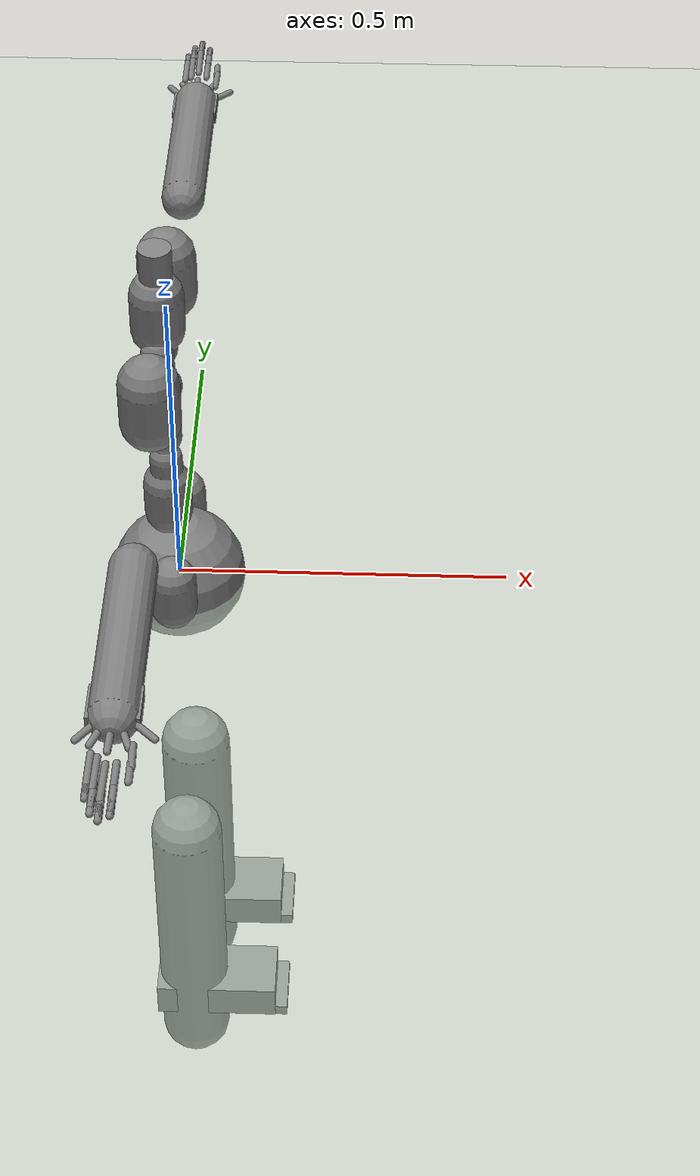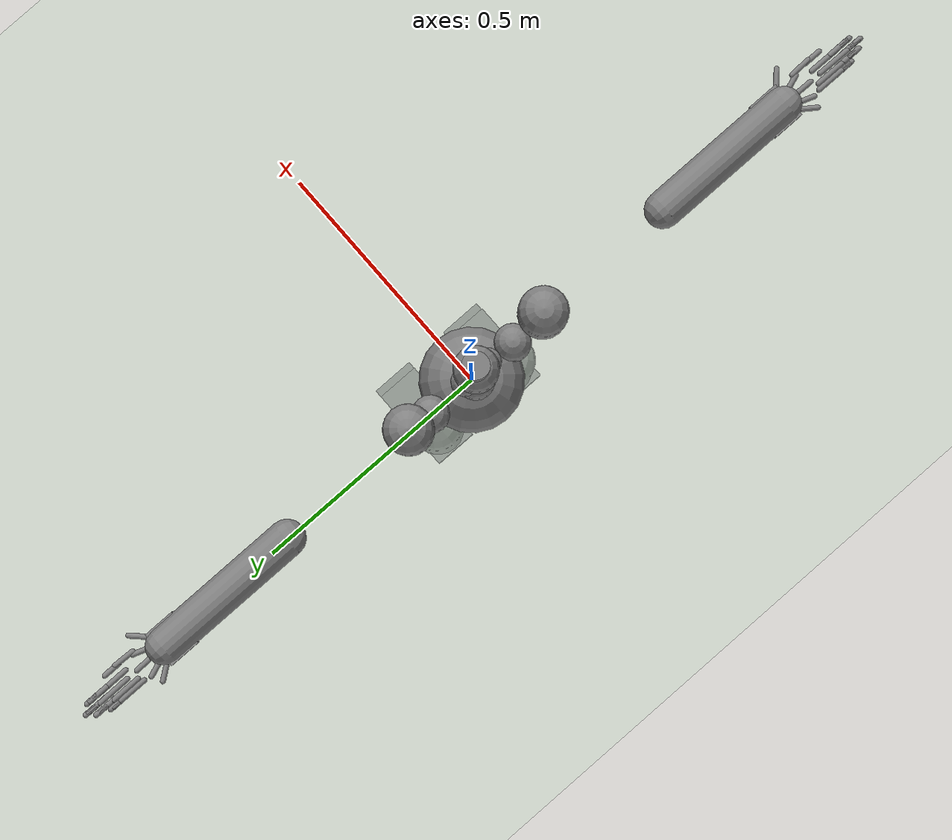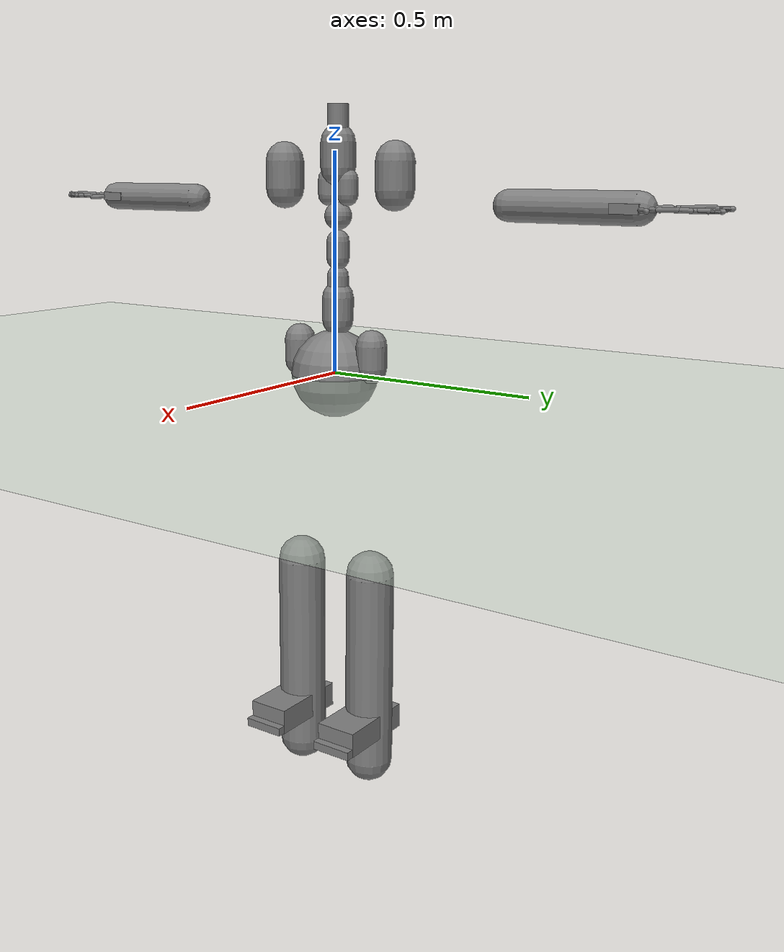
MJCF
<?xml version="1.0" ?>
<mujoco model="humanoid">
  <compiler coordinate="local"/>
  <statistic extent="2" center="0 0 1"/>
  <option timestep="0.00555"/>
  <default>
    <motor ctrlrange="-1 1" ctrllimited="true"/>
    <geom type="capsule" condim="1" friction="1.0 0.05 0.05" solimp=".9 .99 .003" solref=".015 1"/>
    <joint type="hinge" damping="0.1" stiffness="5" armature=".007" limited="true" solimplimit="0 .99 .01"/>
    <site size=".04" group="3"/>
  </default>
  <asset>
    <texture type="skybox" builtin="gradient" rgb1=".4 .5 .6" rgb2="0 0 0" width="100" height="100"/>
    <texture builtin="flat" height="1278" mark="cross" markrgb="1 1 1" name="texgeom" random="0.01" rgb1="0.8 0.6 0.4" rgb2="0.8 0.6 0.4" type="cube" width="127"/>
    <texture builtin="checker" height="100" name="texplane" rgb1="0 0 0" rgb2="0.8 0.8 0.8" type="2d" width="100"/>
    <material name="MatPlane" reflectance="0.5" shininess="1" specular="1" texrepeat="60 60" texture="texplane"/>
    <material name="geom" texture="texgeom" texuniform="true"/>
  </asset>
  <worldbody>
    <light cutoff="100" diffuse="1 1 1" dir="-0 0 -1.3" directional="true" exponent="1" pos="0 0 1.3" specular=".1 .1 .1"/>
    <geom conaffinity="1" condim="3" name="floor" pos="0 0 0" rgba="0.8 0.9 0.8 1" size="100 100 .2" type="plane" material="MatPlane"/>
    <body name="pHipOrigin" pos="0 0 0">
      <freejoint name="pHipOrigin"/>
      <geom type="sphere" contype="1" conaffinity="1" density="4629.6296296296305" size="0.10139" pos="0.0000 0.0000 -0.0000"/>
      <body name="jL5S1" pos="-0.01142534 0 0.10282781">
        <geom type="capsule" contype="1" conaffinity="1" density="1000" fromto="0 0 0.02069 0 0 0.07242" size="0.03621"/>
        <joint name="jL5S1_x" type="hinge" pos="0 0 0" axis="1 0 0" stiffness="500" damping="500" armature="0.02" range="-180.0000 180.0000"/>
        <joint name="jL5S1_y" type="hinge" pos="0 0 0" axis="0 1 0" stiffness="500" damping="500" armature="0.02" range="-180.0000 180.0000"/>
        <joint name="jL5S1_z" type="hinge" pos="0 0 0" axis="0 0 1" stiffness="500" damping="500" armature="0.02" range="-180.0000 180.0000"/>
        <body name="jL4L3" pos="0 0 0.07094710">
          <geom type="capsule" contype="1" conaffinity="1" density="1000" fromto="0 0 0.01419 0 0 0.04966" size="0.02483"/>
          <joint name="jL4L3_x" type="hinge" pos="0 0 0" axis="1 0 0" stiffness="500" damping="500" armature="0.02" range="-180.0000 180.0000"/>
          <joint name="jL4L3_y" type="hinge" pos="0 0 0" axis="0 1 0" stiffness="500" damping="500" armature="0.02" range="-180.0000 180.0000"/>
          <joint name="jL4L3_z" type="hinge" pos="0 0 0" axis="0 0 1" stiffness="500" damping="500" armature="0.02" range="-180.0000 180.0000"/>
          <body name="jL1T12" pos="-0.00057979 0 0.07515083">
            <geom type="capsule" contype="1" conaffinity="1" density="1000" fromto="0 0 0.01503 0 0 0.05261" size="0.02630"/>
            <joint name="jL1T12_x" type="hinge" pos="0 0 0" axis="1 0 0" stiffness="500" damping="500" armature="0.02" range="-180.0000 180.0000"/>
            <joint name="jL1T12_y" type="hinge" pos="0 0 0" axis="0 1 0" stiffness="500" damping="500" armature="0.02" range="-180.0000 180.0000"/>
            <joint name="jL1T12_z" type="hinge" pos="0 0 0" axis="0 0 1" stiffness="500" damping="500" armature="0.02" range="-180.0000 180.0000"/>
            <body name="jT9T8" pos="-0.00060196 0 0.07787338">
              <geom type="sphere" contype="1" conaffinity="1" density="1000" size="0.03115" pos="0.000 0.0000 0.031150"/>
              <joint name="jT9T8_x" type="hinge" pos="0 0 0" axis="1 0 0" stiffness="500" damping="500" armature="0.02" range="-180.0000 180.0000"/>
              <joint name="jT9T8_y" type="hinge" pos="0 0 0" axis="0 1 0" stiffness="500" damping="500" armature="0.02" range="-180.0000 180.0000"/>
              <joint name="jT9T8_z" type="hinge" pos="0 0 0" axis="0 0 1" stiffness="500" damping="500" armature="0.02" range="-180.0000 180.0000"/>
              <body name="jT1C7" pos="0 0 0.11337298">
                <geom type="capsule" contype="1" conaffinity="1" density="1000" fromto="0 0 0.02267 0 0 0.07936" size="0.03968"/>
                <joint name="jT1C7_x" type="hinge" pos="0 0 0" axis="1 0 0" stiffness="500" damping="500" armature="0.02" range="-180.0000 180.0000"/>
                <joint name="jT1C7_y" type="hinge" pos="0 0 0" axis="0 1 0" stiffness="500" damping="500" armature="0.02" range="-180.0000 180.0000"/>
                <joint name="jT1C7_z" type="hinge" pos="0 0 0" axis="0 0 1" stiffness="500" damping="500" armature="0.02" range="-180.0000 180.0000"/>
                <body name="jC1Head" pos="0.00094714 0 0.08028246">
                  <geom type="cylinder" contype="1" conaffinity="1" density="1000" fromto="0 0 0 0 0 0.08029" size="0.02409"/>
                  <joint name="jC1Head_x" type="hinge" pos="0 0 0" axis="1 0 0" stiffness="500" damping="500" armature="0.02" range="-180.0000 180.0000"/>
                  <joint name="jC1Head_y" type="hinge" pos="0 0 0" axis="0 1 0" stiffness="500" damping="500" armature="0.02" range="-180.0000 180.0000"/>
                  <joint name="jC1Head_z" type="hinge" pos="0 0 0" axis="0 0 1" stiffness="500" damping="500" armature="0.02" range="-180.0000 180.0000"/>
                </body>
              </body>
              <body name="jRightT4Shoulder" pos="0 -0.02613416 0.06372083">
                <geom type="capsule" contype="1" conaffinity="1" density="1000" fromto="0 0 0.01377 0 0 0.04821" size="0.02411"/>
                <joint name="jRightT4Shoulder_x" type="hinge" pos="0 0 0" axis="1 0 0" stiffness="500" damping="500" armature="0.02" range="-180.0000 180.0000"/>
                <joint name="jRightT4Shoulder_y" type="hinge" pos="0 0 0" axis="0 1 0" stiffness="500" damping="500" armature="0.02" range="-180.0000 180.0000"/>
                <joint name="jRightT4Shoulder_z" type="hinge" pos="0 0 0" axis="0 0 1" stiffness="500" damping="500" armature="0.02" range="-180.0000 180.0000"/>
                <body name="jRightShoulder" pos="0 -0.12579043 0">
                  <geom type="capsule" contype="1" conaffinity="1" density="1000" fromto="0 0 0.02516 0 0 0.08805" size="0.04403"/>
                  <joint name="jRightShoulder_x" type="hinge" pos="0 0 0" axis="1 0 0" stiffness="500" damping="500" armature="0.02" range="-180.0000 180.0000"/>
                  <joint name="jRightShoulder_y" type="hinge" pos="0 0 0" axis="0 1 0" stiffness="500" damping="500" armature="0.02" range="-180.0000 180.0000"/>
                  <joint name="jRightShoulder_z" type="hinge" pos="0 0 0" axis="0 0 1" stiffness="500" damping="500" armature="0.02" range="-180.0000 180.0000"/>
                  <body name="jRightElbow" pos="0 -0.27853596 0">
                    <geom type="capsule" contype="1" conaffinity="1" density="1000" fromto="0 0 0 0.00000000 -0.27853596 0.00000000" size="0.03342"/>
                    <joint name="jRightElbow_x" type="hinge" pos="0 0 0" axis="1 0 0" stiffness="500" damping="500" armature="0.02" range="-180.0000 180.0000"/>
                    <joint name="jRightElbow_y" type="hinge" pos="0 0 0" axis="0 1 0" stiffness="500" damping="500" armature="0.02" range="-180.0000 180.0000"/>
                    <joint name="jRightElbow_z" type="hinge" pos="0 0 0" axis="0 0 1" stiffness="500" damping="500" armature="0.02" range="-180.0000 180.0000"/>
                    <body name="jRightWrist" pos="0.00010478 -0.26033485 0">
                      <geom density="1000" type="box" pos="0 0 0" size="0.035 0.03 0.01" quat="1.0000 0.0000 0.0000 0.0000"/>
                      <joint name="jRightWrist_x" type="hinge" pos="0 0 0" axis="1 0 0" stiffness="500" damping="500" armature="0.02" range="-180.0000 180.0000"/>
                      <joint name="jRightWrist_y" type="hinge" pos="0 0 0" axis="0 1 0" stiffness="500" damping="500" armature="0.02" range="-180.0000 180.0000"/>
                      <joint name="jRightWrist_z" type="hinge" pos="0 0 0" axis="0 0 1" stiffness="500" damping="500" armature="0.02" range="-180.0000 180.0000"/>
                      <body name="jRightFirstCMC" pos="0.02737740 -0.02624278 -0.00123982">
                        <geom type="capsule" contype="1" conaffinity="1" density="1000" fromto="0 0 0 0.02737740 -0.02624278 -0.00123982" size="0.005"/>
                        <joint name="jRightFirstCMC_x" type="hinge" pos="0 0 0" axis="1 0 0" stiffness="500" damping="500" armature="0.02" range="-180.0000 180.0000"/>
                        <joint name="jRightFirstCMC_y" type="hinge" pos="0 0 0" axis="0 1 0" stiffness="500" damping="500" armature="0.02" range="-180.0000 180.0000"/>
                        <joint name="jRightFirstCMC_z" type="hinge" pos="0 0 0" axis="0 0 1" stiffness="500" damping="500" armature="0.02" range="-180.0000 180.0000"/>
                        <body name="jRightFirstMCP" pos="0.00136931 -0.03864103 0.00081648">
                          <geom type="capsule" contype="1" conaffinity="1" density="1000" fromto="0 0 0 0.00136931 -0.03864103 0.00081648" size="0.005"/>
                          <joint name="jRightFirstMCP_x" type="hinge" pos="0 0 0" axis="1 0 0" stiffness="500" damping="500" armature="0.02" range="-180.0000 180.0000"/>
                          <joint name="jRightFirstMCP_y" type="hinge" pos="0 0 0" axis="0 1 0" stiffness="500" damping="500" armature="0.02" range="-180.0000 180.0000"/>
                          <joint name="jRightFirstMCP_z" type="hinge" pos="0 0 0" axis="0 0 1" stiffness="500" damping="500" armature="0.02" range="-180.0000 180.0000"/>
                          <body name="jRightIP" pos="0 -0.03138667 0">
                            <geom type="capsule" contype="1" conaffinity="1" density="1000" fromto="0 0 0 0.00000000 -0.03138667 0.00000000" size="0.005"/>
                            <joint name="jRightIP_x" type="hinge" pos="0 0 0" axis="1 0 0" stiffness="500" damping="500" armature="0.02" range="-180.0000 180.0000"/>
                            <joint name="jRightIP_y" type="hinge" pos="0 0 0" axis="0 1 0" stiffness="500" damping="500" armature="0.02" range="-180.0000 180.0000"/>
                            <joint name="jRightIP_z" type="hinge" pos="0 0 0" axis="0 0 1" stiffness="500" damping="500" armature="0.02" range="-180.0000 180.0000"/>
                          </body>
                        </body>
                      </body>
                      <body name="jRightSecondCMC" pos="0.01187026 -0.03468115 -0.00060492">
                        <geom type="capsule" contype="1" conaffinity="1" density="1000" fromto="0 0 0 0.01187026 -0.03468115 -0.00060492" size="0.005"/>
                        <joint name="jRightSecondCMC_x" type="hinge" pos="0 0 0" axis="1 0 0" stiffness="500" damping="500" armature="0.02" range="-180.0000 180.0000"/>
                        <joint name="jRightSecondCMC_y" type="hinge" pos="0 0 0" axis="0 1 0" stiffness="500" damping="500" armature="0.02" range="-180.0000 180.0000"/>
                        <joint name="jRightSecondCMC_z" type="hinge" pos="0 0 0" axis="0 0 1" stiffness="500" damping="500" armature="0.02" range="-180.0000 180.0000"/>
                        <body name="jRightSecondMCP" pos="-0.00038136 -0.06082478 -0.00063095">
                          <geom type="capsule" contype="1" conaffinity="1" density="1000" fromto="0 0 0 -0.00038136 -0.06082478 -0.00063095" size="0.005"/>
                          <joint name="jRightSecondMCP_x" type="hinge" pos="0 0 0" axis="1 0 0" stiffness="500" damping="500" armature="0.02" range="-180.0000 180.0000"/>
                          <joint name="jRightSecondMCP_y" type="hinge" pos="0 0 0" axis="0 1 0" stiffness="500" damping="500" armature="0.02" range="-180.0000 180.0000"/>
                          <joint name="jRightSecondMCP_z" type="hinge" pos="0 0 0" axis="0 0 1" stiffness="500" damping="500" armature="0.02" range="-180.0000 180.0000"/>
                          <body name="jRightSecondPIP" pos="0 -0.04176747 0">
                            <geom type="capsule" contype="1" conaffinity="1" density="1000" fromto="0 0 0 0.00000000 -0.04176747 0.00000000" size="0.005"/>
                            <joint name="jRightSecondPIP_x" type="hinge" pos="0 0 0" axis="1 0 0" stiffness="500" damping="500" armature="0.02" range="-180.0000 180.0000"/>
                            <joint name="jRightSecondPIP_y" type="hinge" pos="0 0 0" axis="0 1 0" stiffness="500" damping="500" armature="0.02" range="-180.0000 180.0000"/>
                            <joint name="jRightSecondPIP_z" type="hinge" pos="0 0 0" axis="0 0 1" stiffness="500" damping="500" armature="0.02" range="-180.0000 180.0000"/>
                            <body name="jRightSecondDIP" pos="0 -0.02283315 0">
                              <geom type="capsule" contype="1" conaffinity="1" density="1000" fromto="0 0 0 0.00000000 -0.02283315 0.00000000" size="0.005"/>
                              <joint name="jRightSecondDIP_x" type="hinge" pos="0 0 0" axis="1 0 0" stiffness="500" damping="500" armature="0.02" range="-180.0000 180.0000"/>
                              <joint name="jRightSecondDIP_y" type="hinge" pos="0 0 0" axis="0 1 0" stiffness="500" damping="500" armature="0.02" range="-180.0000 180.0000"/>
                              <joint name="jRightSecondDIP_z" type="hinge" pos="0 0 0" axis="0 0 1" stiffness="500" damping="500" armature="0.02" range="-180.0000 180.0000"/>
                            </body>
                          </body>
                        </body>
                      </body>
                      <body name="jRightThirdCMC" pos="-0.00074524 -0.04030108 0.00169432">
                        <geom type="capsule" contype="1" conaffinity="1" density="1000" fromto="0 0 0 -0.00074524 -0.04030108 0.00169432" size="0.005"/>
                        <joint name="jRightThirdCMC_x" type="hinge" pos="0 0 0" axis="1 0 0" stiffness="500" damping="500" armature="0.02" range="-180.0000 180.0000"/>
                        <joint name="jRightThirdCMC_y" type="hinge" pos="0 0 0" axis="0 1 0" stiffness="500" damping="500" armature="0.02" range="-180.0000 180.0000"/>
                        <joint name="jRightThirdCMC_z" type="hinge" pos="0 0 0" axis="0 0 1" stiffness="500" damping="500" armature="0.02" range="-180.0000 180.0000"/>
                        <body name="jRightThirdMCP" pos="-0.00074665 -0.06186006 0.00168297">
                          <geom type="capsule" contype="1" conaffinity="1" density="1000" fromto="0 0 0 -0.00074665 -0.06186006 0.00168297" size="0.005"/>
                          <joint name="jRightThirdMCP_x" type="hinge" pos="0 0 0" axis="1 0 0" stiffness="500" damping="500" armature="0.02" range="-180.0000 180.0000"/>
                          <joint name="jRightThirdMCP_y" type="hinge" pos="0 0 0" axis="0 1 0" stiffness="500" damping="500" armature="0.02" range="-180.0000 180.0000"/>
                          <joint name="jRightThirdMCP_z" type="hinge" pos="0 0 0" axis="0 0 1" stiffness="500" damping="500" armature="0.02" range="-180.0000 180.0000"/>
                          <body name="jRightThirdPIP" pos="0 -0.04531875 0">
                            <geom type="capsule" contype="1" conaffinity="1" density="1000" fromto="0 0 0 0.00000000 -0.04531875 0.00000000" size="0.005"/>
                            <joint name="jRightThirdPIP_x" type="hinge" pos="0 0 0" axis="1 0 0" stiffness="500" damping="500" armature="0.02" range="-180.0000 180.0000"/>
                            <joint name="jRightThirdPIP_y" type="hinge" pos="0 0 0" axis="0 1 0" stiffness="500" damping="500" armature="0.02" range="-180.0000 180.0000"/>
                            <joint name="jRightThirdPIP_z" type="hinge" pos="0 0 0" axis="0 0 1" stiffness="500" damping="500" armature="0.02" range="-180.0000 180.0000"/>
                            <body name="jRightThirdDIP" pos="0 -0.02422474 0">
                              <geom type="capsule" contype="1" conaffinity="1" density="1000" fromto="0 0 0 0.00000000 -0.02422474 0.00000000" size="0.005"/>
                              <joint name="jRightThirdDIP_x" type="hinge" pos="0 0 0" axis="1 0 0" stiffness="500" damping="500" armature="0.02" range="-180.0000 180.0000"/>
                              <joint name="jRightThirdDIP_y" type="hinge" pos="0 0 0" axis="0 1 0" stiffness="500" damping="500" armature="0.02" range="-180.0000 180.0000"/>
                              <joint name="jRightThirdDIP_z" type="hinge" pos="0 0 0" axis="0 0 1" stiffness="500" damping="500" armature="0.02" range="-180.0000 180.0000"/>
                            </body>
                          </body>
                        </body>
                      </body>
                      <body name="jRightFourthCMC" pos="-0.01237527 -0.03446717 0.00081130">
                        <geom type="capsule" contype="1" conaffinity="1" density="1000" fromto="0 0 0 -0.01237527 -0.03446717 0.00081130" size="0.005"/>
                        <joint name="jRightFourthCMC_x" type="hinge" pos="0 0 0" axis="1 0 0" stiffness="500" damping="500" armature="0.02" range="-180.0000 180.0000"/>
                        <joint name="jRightFourthCMC_y" type="hinge" pos="0 0 0" axis="0 1 0" stiffness="500" damping="500" armature="0.02" range="-180.0000 180.0000"/>
                        <joint name="jRightFourthCMC_z" type="hinge" pos="0 0 0" axis="0 0 1" stiffness="500" damping="500" armature="0.02" range="-180.0000 180.0000"/>
                        <body name="jRightFourthMCP" pos="-0.00039673 -0.05437550 0.00085428">
                          <geom type="capsule" contype="1" conaffinity="1" density="1000" fromto="0 0 0 -0.00039673 -0.05437550 0.00085428" size="0.005"/>
                          <joint name="jRightFourthMCP_x" type="hinge" pos="0 0 0" axis="1 0 0" stiffness="500" damping="500" armature="0.02" range="-180.0000 180.0000"/>
                          <joint name="jRightFourthMCP_y" type="hinge" pos="0 0 0" axis="0 1 0" stiffness="500" damping="500" armature="0.02" range="-180.0000 180.0000"/>
                          <joint name="jRightFourthMCP_z" type="hinge" pos="0 0 0" axis="0 0 1" stiffness="500" damping="500" armature="0.02" range="-180.0000 180.0000"/>
                          <body name="jRightFourthPIP" pos="0 -0.04341105 0">
                            <geom type="capsule" contype="1" conaffinity="1" density="1000" fromto="0 0 0 0.00000000 -0.04341105 0.00000000" size="0.005"/>
                            <joint name="jRightFourthPIP_x" type="hinge" pos="0 0 0" axis="1 0 0" stiffness="500" damping="500" armature="0.02" range="-180.0000 180.0000"/>
                            <joint name="jRightFourthPIP_y" type="hinge" pos="0 0 0" axis="0 1 0" stiffness="500" damping="500" armature="0.02" range="-180.0000 180.0000"/>
                            <joint name="jRightFourthPIP_z" type="hinge" pos="0 0 0" axis="0 0 1" stiffness="500" damping="500" armature="0.02" range="-180.0000 180.0000"/>
                            <body name="jRightFourthDIP" pos="0 -0.02538905 0">
                              <geom type="capsule" contype="1" conaffinity="1" density="1000" fromto="0 0 0 0.00000000 -0.02538905 0.00000000" size="0.005"/>
                              <joint name="jRightFourthDIP_x" type="hinge" pos="0 0 0" axis="1 0 0" stiffness="500" damping="500" armature="0.02" range="-180.0000 180.0000"/>
                              <joint name="jRightFourthDIP_y" type="hinge" pos="0 0 0" axis="0 1 0" stiffness="500" damping="500" armature="0.02" range="-180.0000 180.0000"/>
                              <joint name="jRightFourthDIP_z" type="hinge" pos="0 0 0" axis="0 0 1" stiffness="500" damping="500" armature="0.02" range="-180.0000 180.0000"/>
                            </body>
                          </body>
                        </body>
                      </body>
                      <body name="jRightFifthCMC" pos="-0.02164004 -0.03015293 0.00059482">
                        <geom type="capsule" contype="1" conaffinity="1" density="1000" fromto="0 0 0 -0.02164004 -0.03015293 0.00059482" size="0.005"/>
                        <joint name="jRightFifthCMC_x" type="hinge" pos="0 0 0" axis="1 0 0" stiffness="500" damping="500" armature="0.02" range="-180.0000 180.0000"/>
                        <joint name="jRightFifthCMC_y" type="hinge" pos="0 0 0" axis="0 1 0" stiffness="500" damping="500" armature="0.02" range="-180.0000 180.0000"/>
                        <joint name="jRightFifthCMC_z" type="hinge" pos="0 0 0" axis="0 0 1" stiffness="500" damping="500" armature="0.02" range="-180.0000 180.0000"/>
                        <body name="jRightFifthMCP" pos="-0.00000776 -0.05256160 0.00072331">
                          <geom type="capsule" contype="1" conaffinity="1" density="1000" fromto="0 0 0 -0.00000776 -0.05256160 0.00072331" size="0.005"/>
                          <joint name="jRightFifthMCP_x" type="hinge" pos="0 0 0" axis="1 0 0" stiffness="500" damping="500" armature="0.02" range="-180.0000 180.0000"/>
                          <joint name="jRightFifthMCP_y" type="hinge" pos="0 0 0" axis="0 1 0" stiffness="500" damping="500" armature="0.02" range="-180.0000 180.0000"/>
                          <joint name="jRightFifthMCP_z" type="hinge" pos="0 0 0" axis="0 0 1" stiffness="500" damping="500" armature="0.02" range="-180.0000 180.0000"/>
                          <body name="jRightFifthPIP" pos="0 -0.03581314 0">
                            <geom type="capsule" contype="1" conaffinity="1" density="1000" fromto="0 0 0 0.00000000 -0.03581314 0.00000000" size="0.005"/>
                            <joint name="jRightFifthPIP_x" type="hinge" pos="0 0 0" axis="1 0 0" stiffness="500" damping="500" armature="0.02" range="-180.0000 180.0000"/>
                            <joint name="jRightFifthPIP_y" type="hinge" pos="0 0 0" axis="0 1 0" stiffness="500" damping="500" armature="0.02" range="-180.0000 180.0000"/>
                            <joint name="jRightFifthPIP_z" type="hinge" pos="0 0 0" axis="0 0 1" stiffness="500" damping="500" armature="0.02" range="-180.0000 180.0000"/>
                            <body name="jRightFifthDIP" pos="0 -0.01968053 0">
                              <geom type="capsule" contype="1" conaffinity="1" density="1000" fromto="0 0 0 0.00000000 -0.01968053 0.00000000" size="0.005"/>
                              <joint name="jRightFifthDIP_x" type="hinge" pos="0 0 0" axis="1 0 0" stiffness="500" damping="500" armature="0.02" range="-180.0000 180.0000"/>
                              <joint name="jRightFifthDIP_y" type="hinge" pos="0 0 0" axis="0 1 0" stiffness="500" damping="500" armature="0.02" range="-180.0000 180.0000"/>
                              <joint name="jRightFifthDIP_z" type="hinge" pos="0 0 0" axis="0 0 1" stiffness="500" damping="500" armature="0.02" range="-180.0000 180.0000"/>
                            </body>
                          </body>
                        </body>
                      </body>
                    </body>
                  </body>
                </body>
              </body>
              <body name="jLeftT4Shoulder" pos="0 0.02612775 0.06370520">
                <geom type="capsule" contype="1" conaffinity="1" density="1000" fromto="0 0 0.01377 0 0 0.04820" size="0.02410"/>
                <joint name="jLeftT4Shoulder_x" type="hinge" pos="0 0 0" axis="1 0 0" stiffness="500" damping="500" armature="0.02" range="-180.0000 180.0000"/>
                <joint name="jLeftT4Shoulder_y" type="hinge" pos="0 0 0" axis="0 1 0" stiffness="500" damping="500" armature="0.02" range="-180.0000 180.0000"/>
                <joint name="jLeftT4Shoulder_z" type="hinge" pos="0 0 0" axis="0 0 1" stiffness="500" damping="500" armature="0.02" range="-180.0000 180.0000"/>
                <body name="jLeftShoulder" pos="0 0.12607855 0">
                  <geom type="capsule" contype="1" conaffinity="1" density="1000" fromto="0 0 0.02522 0 0 0.08825" size="0.04413"/>
                  <joint name="jLeftShoulder_x" type="hinge" pos="0 0 0" axis="1 0 0" stiffness="500" damping="500" armature="0.02" range="-180.0000 180.0000"/>
                  <joint name="jLeftShoulder_y" type="hinge" pos="0 0 0" axis="0 1 0" stiffness="500" damping="500" armature="0.02" range="-180.0000 180.0000"/>
                  <joint name="jLeftShoulder_z" type="hinge" pos="0 0 0" axis="0 0 1" stiffness="500" damping="500" armature="0.02" range="-180.0000 180.0000"/>
                  <body name="jLeftElbow" pos="0 0.27934906 0">
                    <geom type="capsule" contype="1" conaffinity="1" density="1000" fromto="0 0 0 0.00000000 0.27934906 0.00000000" size="0.03352"/>
                    <joint name="jLeftElbow_x" type="hinge" pos="0 0 0" axis="1 0 0" stiffness="500" damping="500" armature="0.02" range="-180.0000 180.0000"/>
                    <joint name="jLeftElbow_y" type="hinge" pos="0 0 0" axis="0 1 0" stiffness="500" damping="500" armature="0.02" range="-180.0000 180.0000"/>
                    <joint name="jLeftElbow_z" type="hinge" pos="0 0 0" axis="0 0 1" stiffness="500" damping="500" armature="0.02" range="-180.0000 180.0000"/>
                    <body name="jLeftWrist" pos="0.00010498 0.26083935 0">
                      <geom density="1000" type="box" pos="0 0 0" size="0.035 0.03 0.01" quat="1.0000 0.0000 0.0000 0.0000"/>
                      <joint name="jLeftWrist_x" type="hinge" pos="0 0 0" axis="1 0 0" stiffness="500" damping="500" armature="0.02" range="-180.0000 180.0000"/>
                      <joint name="jLeftWrist_y" type="hinge" pos="0 0 0" axis="0 1 0" stiffness="500" damping="500" armature="0.02" range="-180.0000 180.0000"/>
                      <joint name="jLeftWrist_z" type="hinge" pos="0 0 0" axis="0 0 1" stiffness="500" damping="500" armature="0.02" range="-180.0000 180.0000"/>
                      <body name="jLeftFirstCMC" pos="0.02679603 0.02685931 -0.00119930">
                        <geom type="capsule" contype="1" conaffinity="1" density="1000" fromto="0 0 0 0.02679603 0.02685931 -0.00119930" size="0.005"/>
                        <joint name="jLeftFirstCMC_x" type="hinge" pos="0 0 0" axis="1 0 0" stiffness="500" damping="500" armature="0.02" range="-180.0000 180.0000"/>
                        <joint name="jLeftFirstCMC_y" type="hinge" pos="0 0 0" axis="0 1 0" stiffness="500" damping="500" armature="0.02" range="-180.0000 180.0000"/>
                        <joint name="jLeftFirstCMC_z" type="hinge" pos="0 0 0" axis="0 0 1" stiffness="500" damping="500" armature="0.02" range="-180.0000 180.0000"/>
                        <body name="jLeftFirstMCP" pos="0.00135612 0.03864016 0.00079569">
                          <geom type="capsule" contype="1" conaffinity="1" density="1000" fromto="0 0 0 0.00135612 0.03864016 0.00079569" size="0.005"/>
                          <joint name="jLeftFirstMCP_x" type="hinge" pos="0 0 0" axis="1 0 0" stiffness="500" damping="500" armature="0.02" range="-180.0000 180.0000"/>
                          <joint name="jLeftFirstMCP_y" type="hinge" pos="0 0 0" axis="0 1 0" stiffness="500" damping="500" armature="0.02" range="-180.0000 180.0000"/>
                          <joint name="jLeftFirstMCP_z" type="hinge" pos="0 0 0" axis="0 0 1" stiffness="500" damping="500" armature="0.02" range="-180.0000 180.0000"/>
                          <body name="jLeftIP" pos="0 0.03138667 0">
                            <geom type="capsule" contype="1" conaffinity="1" density="1000" fromto="0 0 0 0.00000000 0.03138667 0.00000000" size="0.005"/>
                            <joint name="jLeftIP_x" type="hinge" pos="0 0 0" axis="1 0 0" stiffness="500" damping="500" armature="0.02" range="-180.0000 180.0000"/>
                            <joint name="jLeftIP_y" type="hinge" pos="0 0 0" axis="0 1 0" stiffness="500" damping="500" armature="0.02" range="-180.0000 180.0000"/>
                            <joint name="jLeftIP_z" type="hinge" pos="0 0 0" axis="0 0 1" stiffness="500" damping="500" armature="0.02" range="-180.0000 180.0000"/>
                          </body>
                        </body>
                      </body>
                      <body name="jLeftSecondCMC" pos="0.01200699 0.03461734 -0.00060992">
                        <geom type="capsule" contype="1" conaffinity="1" density="1000" fromto="0 0 0 0.01200699 0.03461734 -0.00060992" size="0.005"/>
                        <joint name="jLeftSecondCMC_x" type="hinge" pos="0 0 0" axis="1 0 0" stiffness="500" damping="500" armature="0.02" range="-180.0000 180.0000"/>
                        <joint name="jLeftSecondCMC_y" type="hinge" pos="0 0 0" axis="0 1 0" stiffness="500" damping="500" armature="0.02" range="-180.0000 180.0000"/>
                        <joint name="jLeftSecondCMC_z" type="hinge" pos="0 0 0" axis="0 0 1" stiffness="500" damping="500" armature="0.02" range="-180.0000 180.0000"/>
                        <body name="jLeftSecondMCP" pos="-0.00033252 0.06082603 -0.00063875">
                          <geom type="capsule" contype="1" conaffinity="1" density="1000" fromto="0 0 0 -0.00033252 0.06082603 -0.00063875" size="0.005"/>
                          <joint name="jLeftSecondMCP_x" type="hinge" pos="0 0 0" axis="1 0 0" stiffness="500" damping="500" armature="0.02" range="-180.0000 180.0000"/>
                          <joint name="jLeftSecondMCP_y" type="hinge" pos="0 0 0" axis="0 1 0" stiffness="500" damping="500" armature="0.02" range="-180.0000 180.0000"/>
                          <joint name="jLeftSecondMCP_z" type="hinge" pos="0 0 0" axis="0 0 1" stiffness="500" damping="500" armature="0.02" range="-180.0000 180.0000"/>
                          <body name="jLeftSecondPIP" pos="0 0.04176747 0">
                            <geom type="capsule" contype="1" conaffinity="1" density="1000" fromto="0 0 0 0.00000000 0.04176747 0.00000000" size="0.005"/>
                            <joint name="jLeftSecondPIP_x" type="hinge" pos="0 0 0" axis="1 0 0" stiffness="500" damping="500" armature="0.02" range="-180.0000 180.0000"/>
                            <joint name="jLeftSecondPIP_y" type="hinge" pos="0 0 0" axis="0 1 0" stiffness="500" damping="500" armature="0.02" range="-180.0000 180.0000"/>
                            <joint name="jLeftSecondPIP_z" type="hinge" pos="0 0 0" axis="0 0 1" stiffness="500" damping="500" armature="0.02" range="-180.0000 180.0000"/>
                            <body name="jLeftSecondDIP" pos="0 0.02283315 0">
                              <geom type="capsule" contype="1" conaffinity="1" density="1000" fromto="0 0 0 0.00000000 0.02283315 0.00000000" size="0.005"/>
                              <joint name="jLeftSecondDIP_x" type="hinge" pos="0 0 0" axis="1 0 0" stiffness="500" damping="500" armature="0.02" range="-180.0000 180.0000"/>
                              <joint name="jLeftSecondDIP_y" type="hinge" pos="0 0 0" axis="0 1 0" stiffness="500" damping="500" armature="0.02" range="-180.0000 180.0000"/>
                              <joint name="jLeftSecondDIP_z" type="hinge" pos="0 0 0" axis="0 0 1" stiffness="500" damping="500" armature="0.02" range="-180.0000 180.0000"/>
                            </body>
                          </body>
                        </body>
                      </body>
                      <body name="jLeftThirdCMC" pos="-0.00074962 0.04030470 0.00163784">
                        <geom type="capsule" contype="1" conaffinity="1" density="1000" fromto="0 0 0 -0.00074962 0.04030470 0.00163784" size="0.005"/>
                        <joint name="jLeftThirdCMC_x" type="hinge" pos="0 0 0" axis="1 0 0" stiffness="500" damping="500" armature="0.02" range="-180.0000 180.0000"/>
                        <joint name="jLeftThirdCMC_y" type="hinge" pos="0 0 0" axis="0 1 0" stiffness="500" damping="500" armature="0.02" range="-180.0000 180.0000"/>
                        <joint name="jLeftThirdCMC_z" type="hinge" pos="0 0 0" axis="0 0 1" stiffness="500" damping="500" armature="0.02" range="-180.0000 180.0000"/>
                        <body name="jLeftThirdMCP" pos="-0.00075268 0.06186126 0.00164914">
                          <geom type="capsule" contype="1" conaffinity="1" density="1000" fromto="0 0 0 -0.00075268 0.06186126 0.00164914" size="0.005"/>
                          <joint name="jLeftThirdMCP_x" type="hinge" pos="0 0 0" axis="1 0 0" stiffness="500" damping="500" armature="0.02" range="-180.0000 180.0000"/>
                          <joint name="jLeftThirdMCP_y" type="hinge" pos="0 0 0" axis="0 1 0" stiffness="500" damping="500" armature="0.02" range="-180.0000 180.0000"/>
                          <joint name="jLeftThirdMCP_z" type="hinge" pos="0 0 0" axis="0 0 1" stiffness="500" damping="500" armature="0.02" range="-180.0000 180.0000"/>
                          <body name="jLeftThirdPIP" pos="0 0.04531875 0">
                            <geom type="capsule" contype="1" conaffinity="1" density="1000" fromto="0 0 0 0.00000000 0.04531875 0.00000000" size="0.005"/>
                            <joint name="jLeftThirdPIP_x" type="hinge" pos="0 0 0" axis="1 0 0" stiffness="500" damping="500" armature="0.02" range="-180.0000 180.0000"/>
                            <joint name="jLeftThirdPIP_y" type="hinge" pos="0 0 0" axis="0 1 0" stiffness="500" damping="500" armature="0.02" range="-180.0000 180.0000"/>
                            <joint name="jLeftThirdPIP_z" type="hinge" pos="0 0 0" axis="0 0 1" stiffness="500" damping="500" armature="0.02" range="-180.0000 180.0000"/>
                            <body name="jLeftThirdDIP" pos="0 0.02422474 0">
                              <geom type="capsule" contype="1" conaffinity="1" density="1000" fromto="0 0 0 0.00000000 0.02422474 0.00000000" size="0.005"/>
                              <joint name="jLeftThirdDIP_x" type="hinge" pos="0 0 0" axis="1 0 0" stiffness="500" damping="500" armature="0.02" range="-180.0000 180.0000"/>
                              <joint name="jLeftThirdDIP_y" type="hinge" pos="0 0 0" axis="0 1 0" stiffness="500" damping="500" armature="0.02" range="-180.0000 180.0000"/>
                              <joint name="jLeftThirdDIP_z" type="hinge" pos="0 0 0" axis="0 0 1" stiffness="500" damping="500" armature="0.02" range="-180.0000 180.0000"/>
                            </body>
                          </body>
                        </body>
                      </body>
                      <body name="jLeftFourthCMC" pos="-0.01282936 0.03429087 0.00086606">
                        <geom type="capsule" contype="1" conaffinity="1" density="1000" fromto="0 0 0 -0.01282936 0.03429087 0.00086606" size="0.005"/>
                        <joint name="jLeftFourthCMC_x" type="hinge" pos="0 0 0" axis="1 0 0" stiffness="500" damping="500" armature="0.02" range="-180.0000 180.0000"/>
                        <joint name="jLeftFourthCMC_y" type="hinge" pos="0 0 0" axis="0 1 0" stiffness="500" damping="500" armature="0.02" range="-180.0000 180.0000"/>
                        <joint name="jLeftFourthCMC_z" type="hinge" pos="0 0 0" axis="0 0 1" stiffness="500" damping="500" armature="0.02" range="-180.0000 180.0000"/>
                        <body name="jLeftFourthMCP" pos="-0.00042664 0.05437239 0.00090350">
                          <geom type="capsule" contype="1" conaffinity="1" density="1000" fromto="0 0 0 -0.00042664 0.05437239 0.00090350" size="0.005"/>
                          <joint name="jLeftFourthMCP_x" type="hinge" pos="0 0 0" axis="1 0 0" stiffness="500" damping="500" armature="0.02" range="-180.0000 180.0000"/>
                          <joint name="jLeftFourthMCP_y" type="hinge" pos="0 0 0" axis="0 1 0" stiffness="500" damping="500" armature="0.02" range="-180.0000 180.0000"/>
                          <joint name="jLeftFourthMCP_z" type="hinge" pos="0 0 0" axis="0 0 1" stiffness="500" damping="500" armature="0.02" range="-180.0000 180.0000"/>
                          <body name="jLeftFourthPIP" pos="0 0.04341105 0">
                            <geom type="capsule" contype="1" conaffinity="1" density="1000" fromto="0 0 0 0.00000000 0.04341105 0.00000000" size="0.005"/>
                            <joint name="jLeftFourthPIP_x" type="hinge" pos="0 0 0" axis="1 0 0" stiffness="500" damping="500" armature="0.02" range="-180.0000 180.0000"/>
                            <joint name="jLeftFourthPIP_y" type="hinge" pos="0 0 0" axis="0 1 0" stiffness="500" damping="500" armature="0.02" range="-180.0000 180.0000"/>
                            <joint name="jLeftFourthPIP_z" type="hinge" pos="0 0 0" axis="0 0 1" stiffness="500" damping="500" armature="0.02" range="-180.0000 180.0000"/>
                            <body name="jLeftFourthDIP" pos="0 0.02538905 0">
                              <geom type="capsule" contype="1" conaffinity="1" density="1000" fromto="0 0 0 0.00000000 0.02538905 0.00000000" size="0.005"/>
                              <joint name="jLeftFourthDIP_x" type="hinge" pos="0 0 0" axis="1 0 0" stiffness="500" damping="500" armature="0.02" range="-180.0000 180.0000"/>
                              <joint name="jLeftFourthDIP_y" type="hinge" pos="0 0 0" axis="0 1 0" stiffness="500" damping="500" armature="0.02" range="-180.0000 180.0000"/>
                              <joint name="jLeftFourthDIP_z" type="hinge" pos="0 0 0" axis="0 0 1" stiffness="500" damping="500" armature="0.02" range="-180.0000 180.0000"/>
                            </body>
                          </body>
                        </body>
                      </body>
                      <body name="jLeftFifthCMC" pos="-0.02229560 0.02967623 0.00060438">
                        <geom type="capsule" contype="1" conaffinity="1" density="1000" fromto="0 0 0 -0.02229560 0.02967623 0.00060438" size="0.005"/>
                        <joint name="jLeftFifthCMC_x" type="hinge" pos="0 0 0" axis="1 0 0" stiffness="500" damping="500" armature="0.02" range="-180.0000 180.0000"/>
                        <joint name="jLeftFifthCMC_y" type="hinge" pos="0 0 0" axis="0 1 0" stiffness="500" damping="500" armature="0.02" range="-180.0000 180.0000"/>
                        <joint name="jLeftFifthCMC_z" type="hinge" pos="0 0 0" axis="0 0 1" stiffness="500" damping="500" armature="0.02" range="-180.0000 180.0000"/>
                        <body name="jLeftFifthMCP" pos="-0.00001491 0.05256017 0.00075631">
                          <geom type="capsule" contype="1" conaffinity="1" density="1000" fromto="0 0 0 -0.00001491 0.05256017 0.00075631" size="0.005"/>
                          <joint name="jLeftFifthMCP_x" type="hinge" pos="0 0 0" axis="1 0 0" stiffness="500" damping="500" armature="0.02" range="-180.0000 180.0000"/>
                          <joint name="jLeftFifthMCP_y" type="hinge" pos="0 0 0" axis="0 1 0" stiffness="500" damping="500" armature="0.02" range="-180.0000 180.0000"/>
                          <joint name="jLeftFifthMCP_z" type="hinge" pos="0 0 0" axis="0 0 1" stiffness="500" damping="500" armature="0.02" range="-180.0000 180.0000"/>
                          <body name="jLeftFifthPIP" pos="0 0.03581314 0">
                            <geom type="capsule" contype="1" conaffinity="1" density="1000" fromto="0 0 0 0.00000000 0.03581314 0.00000000" size="0.005"/>
                            <joint name="jLeftFifthPIP_x" type="hinge" pos="0 0 0" axis="1 0 0" stiffness="500" damping="500" armature="0.02" range="-180.0000 180.0000"/>
                            <joint name="jLeftFifthPIP_y" type="hinge" pos="0 0 0" axis="0 1 0" stiffness="500" damping="500" armature="0.02" range="-180.0000 180.0000"/>
                            <joint name="jLeftFifthPIP_z" type="hinge" pos="0 0 0" axis="0 0 1" stiffness="500" damping="500" armature="0.02" range="-180.0000 180.0000"/>
                            <body name="jLeftFifthDIP" pos="0 0.01968053 0">
                              <geom type="capsule" contype="1" conaffinity="1" density="1000" fromto="0 0 0 0.00000000 0.01968053 0.00000000" size="0.005"/>
                              <joint name="jLeftFifthDIP_x" type="hinge" pos="0 0 0" axis="1 0 0" stiffness="500" damping="500" armature="0.02" range="-180.0000 180.0000"/>
                              <joint name="jLeftFifthDIP_y" type="hinge" pos="0 0 0" axis="0 1 0" stiffness="500" damping="500" armature="0.02" range="-180.0000 180.0000"/>
                              <joint name="jLeftFifthDIP_z" type="hinge" pos="0 0 0" axis="0 0 1" stiffness="500" damping="500" armature="0.02" range="-180.0000 180.0000"/>
                            </body>
                          </body>
                        </body>
                      </body>
                    </body>
                  </body>
                </body>
              </body>
            </body>
          </body>
        </body>
      </body>
      <body name="jRightHip" pos="-0.00017157 -0.10181599 0.00154452">
        <geom type="capsule" contype="1" conaffinity="1" density="1000" fromto="0 0 0.02037 0 0 0.07128" size="0.03564"/>
        <joint name="jRightHip_x" type="hinge" pos="0 0 0" axis="1 0 0" stiffness="500" damping="500" armature="0.02" range="-180.0000 180.0000"/>
        <joint name="jRightHip_y" type="hinge" pos="0 0 0" axis="0 1 0" stiffness="500" damping="500" armature="0.02" range="-180.0000 180.0000"/>
        <joint name="jRightHip_z" type="hinge" pos="0 0 0" axis="0 0 1" stiffness="500" damping="500" armature="0.02" range="-180.0000 180.0000"/>
        <body name="jRightKnee" pos="0.00005684 0 -0.47670281">
          <geom type="capsule" contype="1" conaffinity="1" density="1000" fromto="0 0 0 0.00005684 0.00000000 -0.47670281" size="0.05720"/>
          <joint name="jRightKnee_x" type="hinge" pos="0 0 0" axis="1 0 0" stiffness="500" damping="500" armature="0.02" range="-180.0000 180.0000"/>
          <joint name="jRightKnee_y" type="hinge" pos="0 0 0" axis="0 1 0" stiffness="500" damping="500" armature="0.02" range="-180.0000 180.0000"/>
          <joint name="jRightKnee_z" type="hinge" pos="0 0 0" axis="0 0 1" stiffness="500" damping="500" armature="0.02" range="-180.0000 180.0000"/>
          <body name="jRightAnkle" pos="0.00038890 0 -0.34442405">
            <geom density="1000" type="box" pos="0.04 0. -0.03" size="0.1 0.05 0.03" quat="1.0 0 0 0"/>
            <joint name="jRightAnkle_x" type="hinge" pos="0 0 0" axis="1 0 0" stiffness="500" damping="500" armature="0.02" range="-180.0000 180.0000"/>
            <joint name="jRightAnkle_y" type="hinge" pos="0 0 0" axis="0 1 0" stiffness="500" damping="500" armature="0.02" range="-180.0000 180.0000"/>
            <joint name="jRightAnkle_z" type="hinge" pos="0 0 0" axis="0 0 1" stiffness="500" damping="500" armature="0.02" range="-180.0000 180.0000"/>
            <body name="jRightBallFoot" pos="0.14992874 0 -0.06878146">
              <geom density="1000" type="box" pos="0 0 0.02" size="0.01 0.05 0.01" quat="1.0 0 0 0"/>
              <joint name="jRightBallFoot_x" type="hinge" pos="0 0 0" axis="1 0 0" stiffness="500" damping="500" armature="0.02" range="-180.0000 180.0000"/>
              <joint name="jRightBallFoot_y" type="hinge" pos="0 0 0" axis="0 1 0" stiffness="500" damping="500" armature="0.02" range="-180.0000 180.0000"/>
              <joint name="jRightBallFoot_z" type="hinge" pos="0 0 0" axis="0 0 1" stiffness="500" damping="500" armature="0.02" range="-180.0000 180.0000"/>
            </body>
          </body>
        </body>
      </body>
      <body name="jLeftHip" pos="-0.00016990 0.10214227 0.00152897">
        <geom type="capsule" contype="1" conaffinity="1" density="1000" fromto="0 0 0.02043 0 0 0.07151" size="0.03575"/>
        <joint name="jLeftHip_x" type="hinge" pos="0 0 0" axis="1 0 0" stiffness="500" damping="500" armature="0.02" range="-180.0000 180.0000"/>
        <joint name="jLeftHip_y" type="hinge" pos="0 0 0" axis="0 1 0" stiffness="500" damping="500" armature="0.02" range="-180.0000 180.0000"/>
        <joint name="jLeftHip_z" type="hinge" pos="0 0 0" axis="0 0 1" stiffness="500" damping="500" armature="0.02" range="-180.0000 180.0000"/>
        <body name="jLeftKnee" pos="0.00005687 0 -0.47698867">
          <geom type="capsule" contype="1" conaffinity="1" density="1000" fromto="0 0 0 0.00005687 0.00000000 -0.47698867" size="0.05724"/>
          <joint name="jLeftKnee_x" type="hinge" pos="0 0 0" axis="1 0 0" stiffness="500" damping="500" armature="0.02" range="-180.0000 180.0000"/>
          <joint name="jLeftKnee_y" type="hinge" pos="0 0 0" axis="0 1 0" stiffness="500" damping="500" armature="0.02" range="-180.0000 180.0000"/>
          <joint name="jLeftKnee_z" type="hinge" pos="0 0 0" axis="0 0 1" stiffness="500" damping="500" armature="0.02" range="-180.0000 180.0000"/>
          <body name="jLeftAnkle" pos="0.00038890 0 -0.34442402">
            <geom density="1000" type="box" pos="0.04 0. -0.03" size="0.1 0.05 0.03" quat="1.0 0 0 0"/>
            <joint name="jLeftAnkle_x" type="hinge" pos="0 0 0" axis="1 0 0" stiffness="500" damping="500" armature="0.02" range="-180.0000 180.0000"/>
            <joint name="jLeftAnkle_y" type="hinge" pos="0 0 0" axis="0 1 0" stiffness="500" damping="500" armature="0.02" range="-180.0000 180.0000"/>
            <joint name="jLeftAnkle_z" type="hinge" pos="0 0 0" axis="0 0 1" stiffness="500" damping="500" armature="0.02" range="-180.0000 180.0000"/>
            <body name="jLeftBallFoot" pos="0.14992873 0 -0.06878146">
              <geom density="1000" type="box" pos="0 0 0.02" size="0.01 0.05 0.01" quat="1.0 0 0 0"/>
              <joint name="jLeftBallFoot_x" type="hinge" pos="0 0 0" axis="1 0 0" stiffness="500" damping="500" armature="0.02" range="-180.0000 180.0000"/>
              <joint name="jLeftBallFoot_y" type="hinge" pos="0 0 0" axis="0 1 0" stiffness="500" damping="500" armature="0.02" range="-180.0000 180.0000"/>
              <joint name="jLeftBallFoot_z" type="hinge" pos="0 0 0" axis="0 0 1" stiffness="500" damping="500" armature="0.02" range="-180.0000 180.0000"/>
            </body>
          </body>
        </body>
      </body>
    </body>
  </worldbody>
  <actuator>
    <motor name="jL5S1_x" joint="jL5S1_x" gear="500"/>
    <motor name="jL5S1_y" joint="jL5S1_y" gear="500"/>
    <motor name="jL5S1_z" joint="jL5S1_z" gear="500"/>
    <motor name="jL4L3_x" joint="jL4L3_x" gear="500"/>
    <motor name="jL4L3_y" joint="jL4L3_y" gear="500"/>
    <motor name="jL4L3_z" joint="jL4L3_z" gear="500"/>
    <motor name="jL1T12_x" joint="jL1T12_x" gear="500"/>
    <motor name="jL1T12_y" joint="jL1T12_y" gear="500"/>
    <motor name="jL1T12_z" joint="jL1T12_z" gear="500"/>
    <motor name="jT9T8_x" joint="jT9T8_x" gear="500"/>
    <motor name="jT9T8_y" joint="jT9T8_y" gear="500"/>
    <motor name="jT9T8_z" joint="jT9T8_z" gear="500"/>
    <motor name="jT1C7_x" joint="jT1C7_x" gear="500"/>
    <motor name="jT1C7_y" joint="jT1C7_y" gear="500"/>
    <motor name="jT1C7_z" joint="jT1C7_z" gear="500"/>
    <motor name="jC1Head_x" joint="jC1Head_x" gear="500"/>
    <motor name="jC1Head_y" joint="jC1Head_y" gear="500"/>
    <motor name="jC1Head_z" joint="jC1Head_z" gear="500"/>
    <motor name="jRightT4Shoulder_x" joint="jRightT4Shoulder_x" gear="500"/>
    <motor name="jRightT4Shoulder_y" joint="jRightT4Shoulder_y" gear="500"/>
    <motor name="jRightT4Shoulder_z" joint="jRightT4Shoulder_z" gear="500"/>
    <motor name="jRightShoulder_x" joint="jRightShoulder_x" gear="500"/>
    <motor name="jRightShoulder_y" joint="jRightShoulder_y" gear="500"/>
    <motor name="jRightShoulder_z" joint="jRightShoulder_z" gear="500"/>
    <motor name="jRightElbow_x" joint="jRightElbow_x" gear="500"/>
    <motor name="jRightElbow_y" joint="jRightElbow_y" gear="500"/>
    <motor name="jRightElbow_z" joint="jRightElbow_z" gear="500"/>
    <motor name="jRightWrist_x" joint="jRightWrist_x" gear="500"/>
    <motor name="jRightWrist_y" joint="jRightWrist_y" gear="500"/>
    <motor name="jRightWrist_z" joint="jRightWrist_z" gear="500"/>
    <motor name="jLeftT4Shoulder_x" joint="jLeftT4Shoulder_x" gear="500"/>
    <motor name="jLeftT4Shoulder_y" joint="jLeftT4Shoulder_y" gear="500"/>
    <motor name="jLeftT4Shoulder_z" joint="jLeftT4Shoulder_z" gear="500"/>
    <motor name="jLeftShoulder_x" joint="jLeftShoulder_x" gear="500"/>
    <motor name="jLeftShoulder_y" joint="jLeftShoulder_y" gear="500"/>
    <motor name="jLeftShoulder_z" joint="jLeftShoulder_z" gear="500"/>
    <motor name="jLeftElbow_x" joint="jLeftElbow_x" gear="500"/>
    <motor name="jLeftElbow_y" joint="jLeftElbow_y" gear="500"/>
    <motor name="jLeftElbow_z" joint="jLeftElbow_z" gear="500"/>
    <motor name="jLeftWrist_x" joint="jLeftWrist_x" gear="500"/>
    <motor name="jLeftWrist_y" joint="jLeftWrist_y" gear="500"/>
    <motor name="jLeftWrist_z" joint="jLeftWrist_z" gear="500"/>
    <motor name="jRightHip_x" joint="jRightHip_x" gear="500"/>
    <motor name="jRightHip_y" joint="jRightHip_y" gear="500"/>
    <motor name="jRightHip_z" joint="jRightHip_z" gear="500"/>
    <motor name="jRightKnee_x" joint="jRightKnee_x" gear="500"/>
    <motor name="jRightKnee_y" joint="jRightKnee_y" gear="500"/>
    <motor name="jRightKnee_z" joint="jRightKnee_z" gear="500"/>
    <motor name="jRightAnkle_x" joint="jRightAnkle_x" gear="500"/>
    <motor name="jRightAnkle_y" joint="jRightAnkle_y" gear="500"/>
    <motor name="jRightAnkle_z" joint="jRightAnkle_z" gear="500"/>
    <motor name="jRightBallFoot_x" joint="jRightBallFoot_x" gear="500"/>
    <motor name="jRightBallFoot_y" joint="jRightBallFoot_y" gear="500"/>
    <motor name="jRightBallFoot_z" joint="jRightBallFoot_z" gear="500"/>
    <motor name="jLeftHip_x" joint="jLeftHip_x" gear="500"/>
    <motor name="jLeftHip_y" joint="jLeftHip_y" gear="500"/>
    <motor name="jLeftHip_z" joint="jLeftHip_z" gear="500"/>
    <motor name="jLeftKnee_x" joint="jLeftKnee_x" gear="500"/>
    <motor name="jLeftKnee_y" joint="jLeftKnee_y" gear="500"/>
    <motor name="jLeftKnee_z" joint="jLeftKnee_z" gear="500"/>
    <motor name="jLeftAnkle_x" joint="jLeftAnkle_x" gear="500"/>
    <motor name="jLeftAnkle_y" joint="jLeftAnkle_y" gear="500"/>
    <motor name="jLeftAnkle_z" joint="jLeftAnkle_z" gear="500"/>
    <motor name="jLeftBallFoot_x" joint="jLeftBallFoot_x" gear="500"/>
    <motor name="jLeftBallFoot_y" joint="jLeftBallFoot_y" gear="500"/>
    <motor name="jLeftBallFoot_z" joint="jLeftBallFoot_z" gear="500"/>
    <motor name="jLeftFirstCMC_x" joint="jLeftFirstCMC_x" gear="500"/>
    <motor name="jLeftFirstCMC_y" joint="jLeftFirstCMC_y" gear="500"/>
    <motor name="jLeftFirstCMC_z" joint="jLeftFirstCMC_z" gear="500"/>
    <motor name="jLeftFirstMCP_x" joint="jLeftFirstMCP_x" gear="500"/>
    <motor name="jLeftFirstMCP_y" joint="jLeftFirstMCP_y" gear="500"/>
    <motor name="jLeftFirstMCP_z" joint="jLeftFirstMCP_z" gear="500"/>
    <motor name="jLeftIP_x" joint="jLeftIP_x" gear="500"/>
    <motor name="jLeftIP_y" joint="jLeftIP_y" gear="500"/>
    <motor name="jLeftIP_z" joint="jLeftIP_z" gear="500"/>
    <motor name="jLeftSecondCMC_x" joint="jLeftSecondCMC_x" gear="500"/>
    <motor name="jLeftSecondCMC_y" joint="jLeftSecondCMC_y" gear="500"/>
    <motor name="jLeftSecondCMC_z" joint="jLeftSecondCMC_z" gear="500"/>
    <motor name="jLeftSecondMCP_x" joint="jLeftSecondMCP_x" gear="500"/>
    <motor name="jLeftSecondMCP_y" joint="jLeftSecondMCP_y" gear="500"/>
    <motor name="jLeftSecondMCP_z" joint="jLeftSecondMCP_z" gear="500"/>
    <motor name="jLeftSecondPIP_x" joint="jLeftSecondPIP_x" gear="500"/>
    <motor name="jLeftSecondPIP_y" joint="jLeftSecondPIP_y" gear="500"/>
    <motor name="jLeftSecondPIP_z" joint="jLeftSecondPIP_z" gear="500"/>
    <motor name="jLeftSecondDIP_x" joint="jLeftSecondDIP_x" gear="500"/>
    <motor name="jLeftSecondDIP_y" joint="jLeftSecondDIP_y" gear="500"/>
    <motor name="jLeftSecondDIP_z" joint="jLeftSecondDIP_z" gear="500"/>
    <motor name="jLeftThirdCMC_x" joint="jLeftThirdCMC_x" gear="500"/>
    <motor name="jLeftThirdCMC_y" joint="jLeftThirdCMC_y" gear="500"/>
    <motor name="jLeftThirdCMC_z" joint="jLeftThirdCMC_z" gear="500"/>
    <motor name="jLeftThirdMCP_x" joint="jLeftThirdMCP_x" gear="500"/>
    <motor name="jLeftThirdMCP_y" joint="jLeftThirdMCP_y" gear="500"/>
    <motor name="jLeftThirdMCP_z" joint="jLeftThirdMCP_z" gear="500"/>
    <motor name="jLeftThirdPIP_x" joint="jLeftThirdPIP_x" gear="500"/>
    <motor name="jLeftThirdPIP_y" joint="jLeftThirdPIP_y" gear="500"/>
    <motor name="jLeftThirdPIP_z" joint="jLeftThirdPIP_z" gear="500"/>
    <motor name="jLeftThirdDIP_x" joint="jLeftThirdDIP_x" gear="500"/>
    <motor name="jLeftThirdDIP_y" joint="jLeftThirdDIP_y" gear="500"/>
    <motor name="jLeftThirdDIP_z" joint="jLeftThirdDIP_z" gear="500"/>
    <motor name="jLeftFourthCMC_x" joint="jLeftFourthCMC_x" gear="500"/>
    <motor name="jLeftFourthCMC_y" joint="jLeftFourthCMC_y" gear="500"/>
    <motor name="jLeftFourthCMC_z" joint="jLeftFourthCMC_z" gear="500"/>
    <motor name="jLeftFourthMCP_x" joint="jLeftFourthMCP_x" gear="500"/>
    <motor name="jLeftFourthMCP_y" joint="jLeftFourthMCP_y" gear="500"/>
    <motor name="jLeftFourthMCP_z" joint="jLeftFourthMCP_z" gear="500"/>
    <motor name="jLeftFourthPIP_x" joint="jLeftFourthPIP_x" gear="500"/>
    <motor name="jLeftFourthPIP_y" joint="jLeftFourthPIP_y" gear="500"/>
    <motor name="jLeftFourthPIP_z" joint="jLeftFourthPIP_z" gear="500"/>
    <motor name="jLeftFourthDIP_x" joint="jLeftFourthDIP_x" gear="500"/>
    <motor name="jLeftFourthDIP_y" joint="jLeftFourthDIP_y" gear="500"/>
    <motor name="jLeftFourthDIP_z" joint="jLeftFourthDIP_z" gear="500"/>
    <motor name="jLeftFifthCMC_x" joint="jLeftFifthCMC_x" gear="500"/>
    <motor name="jLeftFifthCMC_y" joint="jLeftFifthCMC_y" gear="500"/>
    <motor name="jLeftFifthCMC_z" joint="jLeftFifthCMC_z" gear="500"/>
    <motor name="jLeftFifthMCP_x" joint="jLeftFifthMCP_x" gear="500"/>
    <motor name="jLeftFifthMCP_y" joint="jLeftFifthMCP_y" gear="500"/>
    <motor name="jLeftFifthMCP_z" joint="jLeftFifthMCP_z" gear="500"/>
    <motor name="jLeftFifthPIP_x" joint="jLeftFifthPIP_x" gear="500"/>
    <motor name="jLeftFifthPIP_y" joint="jLeftFifthPIP_y" gear="500"/>
    <motor name="jLeftFifthPIP_z" joint="jLeftFifthPIP_z" gear="500"/>
    <motor name="jLeftFifthDIP_x" joint="jLeftFifthDIP_x" gear="500"/>
    <motor name="jLeftFifthDIP_y" joint="jLeftFifthDIP_y" gear="500"/>
    <motor name="jLeftFifthDIP_z" joint="jLeftFifthDIP_z" gear="500"/>
    <motor name="jRightFirstCMC_x" joint="jRightFirstCMC_x" gear="500"/>
    <motor name="jRightFirstCMC_y" joint="jRightFirstCMC_y" gear="500"/>
    <motor name="jRightFirstCMC_z" joint="jRightFirstCMC_z" gear="500"/>
    <motor name="jRightFirstMCP_x" joint="jRightFirstMCP_x" gear="500"/>
    <motor name="jRightFirstMCP_y" joint="jRightFirstMCP_y" gear="500"/>
    <motor name="jRightFirstMCP_z" joint="jRightFirstMCP_z" gear="500"/>
    <motor name="jRightIP_x" joint="jRightIP_x" gear="500"/>
    <motor name="jRightIP_y" joint="jRightIP_y" gear="500"/>
    <motor name="jRightIP_z" joint="jRightIP_z" gear="500"/>
    <motor name="jRightSecondCMC_x" joint="jRightSecondCMC_x" gear="500"/>
    <motor name="jRightSecondCMC_y" joint="jRightSecondCMC_y" gear="500"/>
    <motor name="jRightSecondCMC_z" joint="jRightSecondCMC_z" gear="500"/>
    <motor name="jRightSecondMCP_x" joint="jRightSecondMCP_x" gear="500"/>
    <motor name="jRightSecondMCP_y" joint="jRightSecondMCP_y" gear="500"/>
    <motor name="jRightSecondMCP_z" joint="jRightSecondMCP_z" gear="500"/>
    <motor name="jRightSecondPIP_x" joint="jRightSecondPIP_x" gear="500"/>
    <motor name="jRightSecondPIP_y" joint="jRightSecondPIP_y" gear="500"/>
    <motor name="jRightSecondPIP_z" joint="jRightSecondPIP_z" gear="500"/>
    <motor name="jRightSecondDIP_x" joint="jRightSecondDIP_x" gear="500"/>
    <motor name="jRightSecondDIP_y" joint="jRightSecondDIP_y" gear="500"/>
    <motor name="jRightSecondDIP_z" joint="jRightSecondDIP_z" gear="500"/>
    <motor name="jRightThirdCMC_x" joint="jRightThirdCMC_x" gear="500"/>
    <motor name="jRightThirdCMC_y" joint="jRightThirdCMC_y" gear="500"/>
    <motor name="jRightThirdCMC_z" joint="jRightThirdCMC_z" gear="500"/>
    <motor name="jRightThirdMCP_x" joint="jRightThirdMCP_x" gear="500"/>
    <motor name="jRightThirdMCP_y" joint="jRightThirdMCP_y" gear="500"/>
    <motor name="jRightThirdMCP_z" joint="jRightThirdMCP_z" gear="500"/>
    <motor name="jRightThirdPIP_x" joint="jRightThirdPIP_x" gear="500"/>
    <motor name="jRightThirdPIP_y" joint="jRightThirdPIP_y" gear="500"/>
    <motor name="jRightThirdPIP_z" joint="jRightThirdPIP_z" gear="500"/>
    <motor name="jRightThirdDIP_x" joint="jRightThirdDIP_x" gear="500"/>
    <motor name="jRightThirdDIP_y" joint="jRightThirdDIP_y" gear="500"/>
    <motor name="jRightThirdDIP_z" joint="jRightThirdDIP_z" gear="500"/>
    <motor name="jRightFourthCMC_x" joint="jRightFourthCMC_x" gear="500"/>
    <motor name="jRightFourthCMC_y" joint="jRightFourthCMC_y" gear="500"/>
    <motor name="jRightFourthCMC_z" joint="jRightFourthCMC_z" gear="500"/>
    <motor name="jRightFourthMCP_x" joint="jRightFourthMCP_x" gear="500"/>
    <motor name="jRightFourthMCP_y" joint="jRightFourthMCP_y" gear="500"/>
    <motor name="jRightFourthMCP_z" joint="jRightFourthMCP_z" gear="500"/>
    <motor name="jRightFourthPIP_x" joint="jRightFourthPIP_x" gear="500"/>
    <motor name="jRightFourthPIP_y" joint="jRightFourthPIP_y" gear="500"/>
    <motor name="jRightFourthPIP_z" joint="jRightFourthPIP_z" gear="500"/>
    <motor name="jRightFourthDIP_x" joint="jRightFourthDIP_x" gear="500"/>
    <motor name="jRightFourthDIP_y" joint="jRightFourthDIP_y" gear="500"/>
    <motor name="jRightFourthDIP_z" joint="jRightFourthDIP_z" gear="500"/>
    <motor name="jRightFifthCMC_x" joint="jRightFifthCMC_x" gear="500"/>
    <motor name="jRightFifthCMC_y" joint="jRightFifthCMC_y" gear="500"/>
    <motor name="jRightFifthCMC_z" joint="jRightFifthCMC_z" gear="500"/>
    <motor name="jRightFifthMCP_x" joint="jRightFifthMCP_x" gear="500"/>
    <motor name="jRightFifthMCP_y" joint="jRightFifthMCP_y" gear="500"/>
    <motor name="jRightFifthMCP_z" joint="jRightFifthMCP_z" gear="500"/>
    <motor name="jRightFifthPIP_x" joint="jRightFifthPIP_x" gear="500"/>
    <motor name="jRightFifthPIP_y" joint="jRightFifthPIP_y" gear="500"/>
    <motor name="jRightFifthPIP_z" joint="jRightFifthPIP_z" gear="500"/>
    <motor name="jRightFifthDIP_x" joint="jRightFifthDIP_x" gear="500"/>
    <motor name="jRightFifthDIP_y" joint="jRightFifthDIP_y" gear="500"/>
    <motor name="jRightFifthDIP_z" joint="jRightFifthDIP_z" gear="500"/>
  </actuator>
</mujoco>
